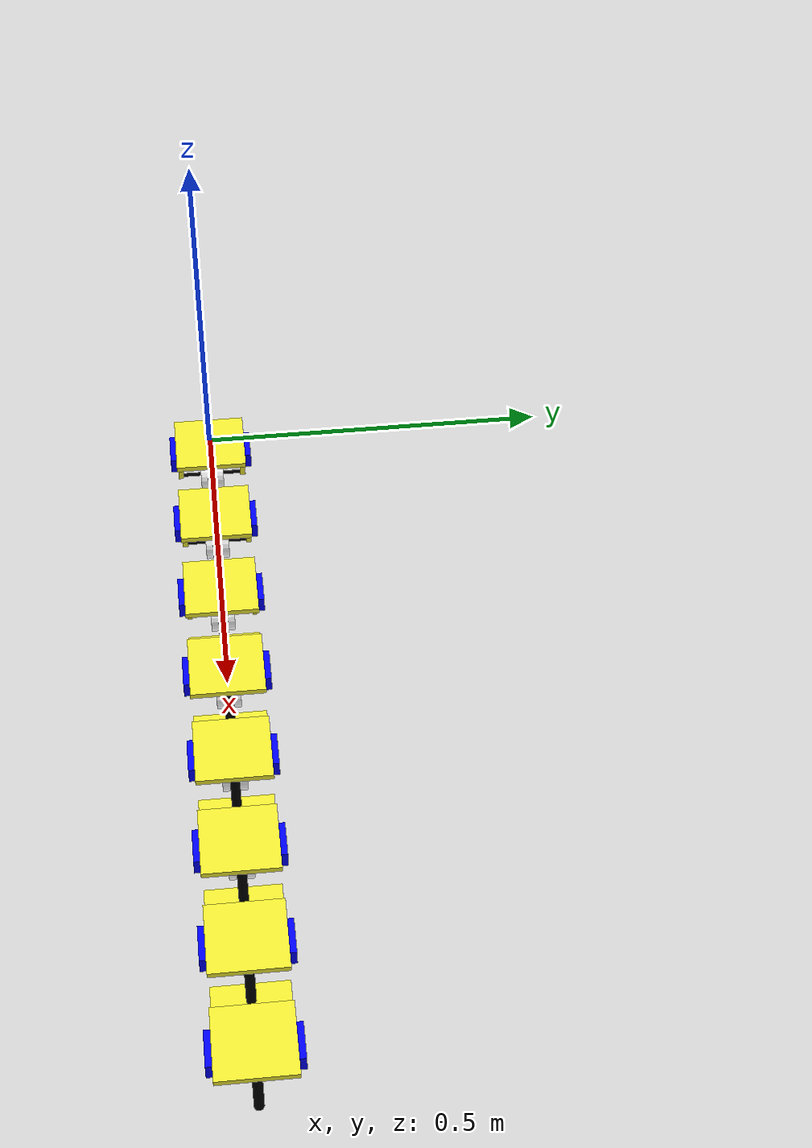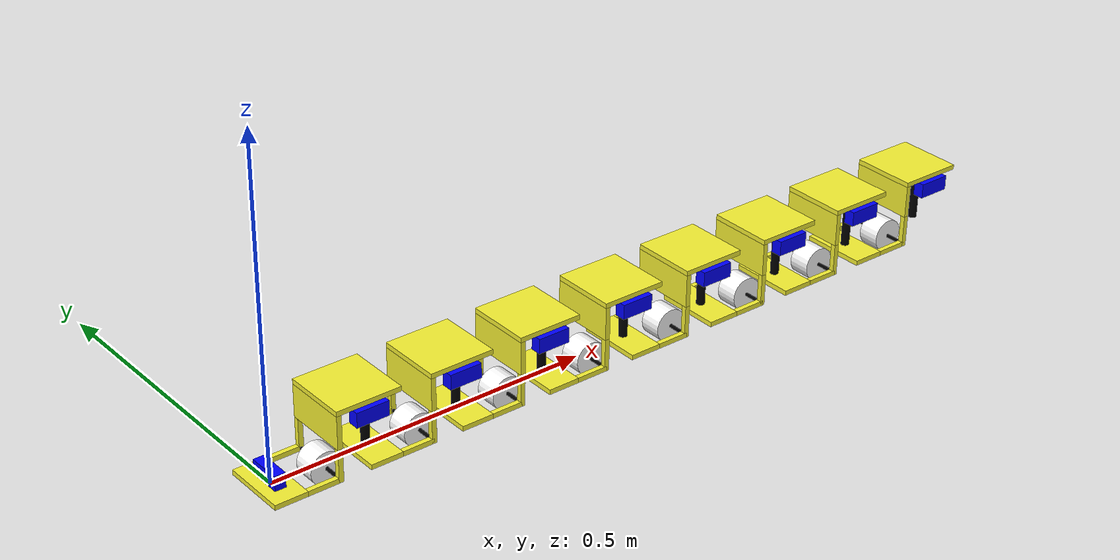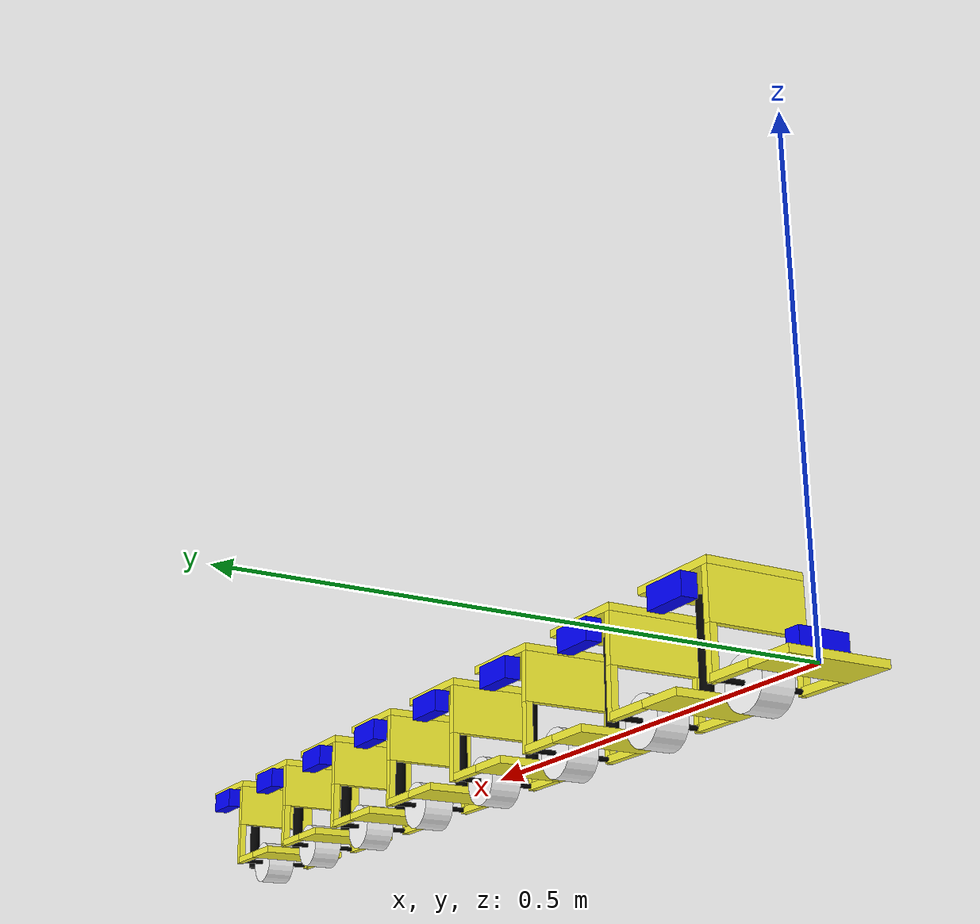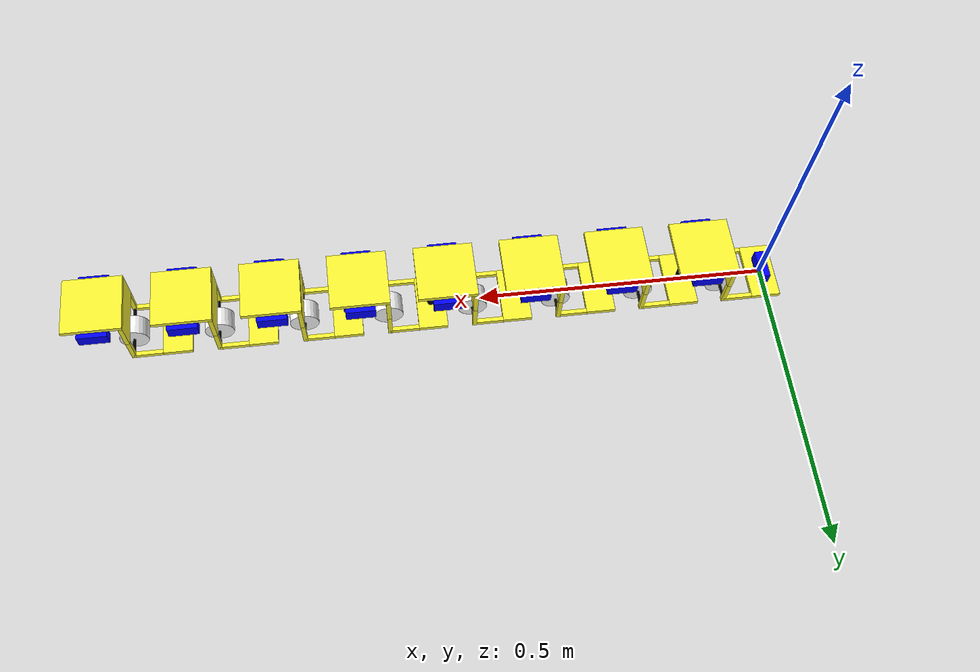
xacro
<?xml version = "1.0"?>
<robot xmlns:xacro = "http://www.ros.org/wiki/xacro" name = "snake_robot">

	<xacro:property name = "pi" value = "3.1416"/>

	<xacro:property name = "length" value = "0.05"/>
	<xacro:property name = "width" value = "0.1"/>
	<xacro:property name = "thick" value = "0.0075"/>
	<xacro:property name = "axel_radius" value = "0.0025"/>
	<xacro:property name = "wheel_radius" value = "0.025"/>
	<xacro:property name = "wheel_length" value = "${width/3}"/>

	<xacro:property name = "plate_mass" value = "0.25"/>
	<xacro:property name = "bar_mass" value = "${(thick/width)*plate_mass}"/>
	<xacro:property name = "axel_mass" value = "0.01"/>
	<xacro:property name = "wheel_mass" value = "0.05"/>
	<xacro:property name = "servo_mass" value = "0.001"/>

	<xacro:include filename = "snake_module.xacro"/>

	<gazebo>
      <plugin name = "gazebo_ros_control" filename = "libgazebo_ros_control.so">
        <robotNamespace>/snake_robot</robotNamespace>
      </plugin>
    </gazebo>

	<xacro:create_snake_module prefix = ""/>

	<xacro:create_snake_module prefix = "2"/>
	<joint name = "base_to_2" type = "revolute">
		<parent link = "servo_motor"/>
		<child link = "2base_link"/>
		<origin xyz = "0 0 ${length}" rpy = "0 ${pi} 0"/>
		<axis xyz = "0 0 1"/>
		<limit effort = "1000.0" lower = "-${pi/4}" upper = "${pi/4}" velocity = "0.5"/>
	</joint>
	<transmission name = "b_2_tran">
		<type>transmission_interface/SimpleTransmission</type>
		<joint name = "base_to_2">
			<hardwareInterface>EffortJointInterface</hardwareInterface>
		</joint>
		<actuator name = "b_2_servo">
			<hardwareInterface>EffortJointInterface</hardwareInterface>
			<mechanicalReduction>1</mechanicalReduction>
		</actuator>
	</transmission>

	<xacro:create_snake_module prefix = "3"/>
	<joint name = "2_to_3" type = "revolute">
		<parent link = "2servo_motor"/>
		<child link = "3base_link"/>
		<origin xyz = "0 0 ${length}" rpy = "0 ${pi} 0"/>
		<axis xyz = "0 0 1"/>
		<limit effort = "1000.0" lower = "-${pi/4}" upper = "${pi/4}" velocity = "0.5"/>
	</joint>
	<transmission name = "2_3_tran">
		<type>transmission_interface/SimpleTransmission</type>
		<joint name = "2_to_3">
			<hardwareInterface>EffortJointInterface</hardwareInterface>
		</joint>
		<actuator name = "2_3_servo">
			<hardwareInterface>EffortJointInterface</hardwareInterface>
			<mechanicalReduction>1</mechanicalReduction>
		</actuator>
	</transmission>

	<xacro:create_snake_module prefix = "4"/>
	<joint name = "3_to_4" type = "revolute">
		<parent link = "3servo_motor"/>
		<child link = "4base_link"/>
		<origin xyz = "0 0 ${length}" rpy = "0 ${pi} 0"/>
		<axis xyz = "0 0 1"/>
		<limit effort = "1000.0" lower = "-${pi/4}" upper = "${pi/4}" velocity = "0.5"/>
	</joint>
	<transmission name = "3_4_tran">
		<type>transmission_interface/SimpleTransmission</type>
		<joint name = "3_to_4">
			<hardwareInterface>EffortJointInterface</hardwareInterface>
		</joint>
		<actuator name = "3_4_servo">
			<hardwareInterface>EffortJointInterface</hardwareInterface>
			<mechanicalReduction>1</mechanicalReduction>
		</actuator>
	</transmission>

	<xacro:create_snake_module prefix = "5"/>
	<joint name = "4_to_5" type = "revolute">
		<parent link = "4servo_motor"/>
		<child link = "5base_link"/>
		<origin xyz = "0 0 ${length}" rpy = "0 ${pi} 0"/>
		<axis xyz = "0 0 1"/>
		<limit effort = "1000.0" lower = "-${pi/4}" upper = "${pi/4}" velocity = "0.5"/>
	</joint>
	<transmission name = "4_5_tran">
		<type>transmission_interface/SimpleTransmission</type>
		<joint name = "4_to_5">
			<hardwareInterface>EffortJointInterface</hardwareInterface>
		</joint>
		<actuator name = "4_5_servo">
			<hardwareInterface>EffortJointInterface</hardwareInterface>
			<mechanicalReduction>1</mechanicalReduction>
		</actuator>
	</transmission>

	<xacro:create_snake_module prefix = "6"/>
	<joint name = "5_to_6" type = "revolute">
		<parent link = "5servo_motor"/>
		<child link = "6base_link"/>
		<origin xyz = "0 0 ${length}" rpy = "0 ${pi} 0"/>
		<axis xyz = "0 0 1"/>
		<limit effort = "1000.0" lower = "-${pi/4}" upper = "${pi/4}" velocity = "0.5"/>
	</joint>
	<transmission name = "5_6_tran">
		<type>transmission_interface/SimpleTransmission</type>
		<joint name = "5_to_6">
			<hardwareInterface>EffortJointInterface</hardwareInterface>
		</joint>
		<actuator name = "5_6_servo">
			<hardwareInterface>EffortJointInterface</hardwareInterface>
			<mechanicalReduction>1</mechanicalReduction>
		</actuator>
	</transmission>

	<xacro:create_snake_module prefix = "7"/>
	<joint name = "6_to_7" type = "revolute">
		<parent link = "6servo_motor"/>
		<child link = "7base_link"/>
		<origin xyz = "0 0 ${length}" rpy = "0 ${pi} 0"/>
		<axis xyz = "0 0 1"/>
		<limit effort = "1000.0" lower = "-${pi/4}" upper = "${pi/4}" velocity = "0.5"/>
	</joint>
	<transmission name = "6_7_tran">
		<type>transmission_interface/SimpleTransmission</type>
		<joint name = "6_to_7">
			<hardwareInterface>EffortJointInterface</hardwareInterface>
		</joint>
		<actuator name = "6_7_servo">
			<hardwareInterface>EffortJointInterface</hardwareInterface>
			<mechanicalReduction>1</mechanicalReduction>
		</actuator>
	</transmission>

	<xacro:create_snake_module prefix = "8"/>
	<joint name = "7_to_8" type = "revolute">
		<parent link = "7servo_motor"/>
		<child link = "8base_link"/>
		<origin xyz = "0 0 ${length}" rpy = "0 ${pi} 0"/>
		<axis xyz = "0 0 1"/>
		<limit effort = "1000.0" lower = "-${pi/4}" upper = "${pi/4}" velocity = "0.5"/>
	</joint>
	<transmission name = "7_8_tran">
		<type>transmission_interface/SimpleTransmission</type>
		<joint name = "7_to_8">
			<hardwareInterface>EffortJointInterface</hardwareInterface>
		</joint>
		<actuator name = "7_8_servo">
			<hardwareInterface>EffortJointInterface</hardwareInterface>
			<mechanicalReduction>1</mechanicalReduction>
		</actuator>
	</transmission>

	<link name="head_sonar">
    	<visual>
      		<geometry>
        		<box size="${length/3} ${width/2} ${3*thick}"/>
      		</geometry>
      		<material name="blue">
      			<color rgba = "0 0 1 1"/>
      		</material>
    	</visual>
    </link>
    <joint name="head_sonar_joint" type="fixed">
    	<origin xyz="0 0 ${2*thick}" rpy="0 0 ${pi}"/>
    	<parent link="base_link"/>
    	<child link="head_sonar"/>
  	</joint>

	<xacro:include filename = "robot_tags.gazebo"/>

</robot>

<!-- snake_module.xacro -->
<robot xmlns:xacro = "http://www.ros.org/wiki/xacro" name = "snake_module">

	<xacro:macro name = "create_box" params = "bname len wid thk mass clr">
		<link name = "${bname}">
			<visual>
				<geometry>
					<box size = "${len} ${wid} ${thk}"/>
				</geometry>
				<material name = "">
					<color rgba = "${clr} 1"/>
				</material>
			</visual>
			<collision>
				<geometry>
					<box size = "${len} ${wid} ${thk}"/>
				</geometry>
			</collision>
			<inertial>
				<mass value = "${mass}"/>
				<inertia ixx = "${(mass*((wid*wid)+(thk*thk)))/12}" ixy = "0.0" ixz = "0.0"
					iyy = "${(mass*((len*len)+(thk*thk)))/12}" iyz = "0.0"
					izz = "${(mass*((wid*wid)+(len*len)))/12}"/>
			</inertial>
		</link>
	</xacro:macro>

	<xacro:macro name = "create_cyl" params = "cname len rad mass clr">
		<link name = "${cname}">
			<visual>
				<geometry>
					<cylinder length = "${len}" radius = "${rad}"/>
				</geometry>
				<material name = "">
					<color rgba = "${clr} 1"/>
				</material>
			</visual>
			<collision>
				<geometry>
					<cylinder length = "${len}" radius = "${rad}"/>
				</geometry>
			</collision>
			<inertial>
				<mass value = "${mass}"/>
				<inertia ixx = "${(mass*((3*rad*rad)+(len*len)))/12}" ixy = "0.0" ixz = "0.0"
					iyy = "${(mass*((3*rad*rad)+(len*len)))/12}" iyz = "0.0"
					izz = "${(mass*rad*rad)/2}"/>
			</inertial>
		</link>
	</xacro:macro>

	<xacro:macro name = "create_snake_module" params = "prefix">

		<xacro:create_box bname = "${prefix}base_link" len = "${length}" wid = "${width}" thk = "${thick}" mass = "${plate_mass}" clr = "0.97 0.95 0.20"/>
		<xacro:create_box bname = "${prefix}base_bar1" len = "${length}" wid = "${thick}" thk = "${thick}" mass = "${bar_mass}" clr = "0.97 0.95 0.20"/>
		<xacro:create_box bname = "${prefix}base_bar2" len = "${length}" wid = "${thick}" thk = "${thick}" mass = "${bar_mass}" clr = "0.97 0.95 0.20"/>

		<joint name = "${prefix}base_to_bbar1" type = "fixed">
			<parent link = "${prefix}base_link"/>
			<child link = "${prefix}base_bar1"/>
			<origin xyz = "${length} ${(width-thick)/2} 0"/>
		</joint>

		<joint name = "${prefix}base_to_bbar2" type = "fixed">
			<parent link = "${prefix}base_link"/>
			<child link = "${prefix}base_bar2"/>
			<origin xyz = "${length} -${(width-thick)/2} 0"/>
		</joint>

		<xacro:create_box bname = "${prefix}step_link" len = "${length}" wid = "${width}" thk = "${thick}" mass = "${plate_mass}" clr = "0.97 0.95 0.20"/>
		<xacro:create_box bname = "${prefix}step_bar1" len = "${length}" wid = "${thick}" thk = "${thick}" mass = "${bar_mass}" clr = "0.97 0.95 0.20"/>
		<xacro:create_box bname = "${prefix}step_bar2" len = "${length}" wid = "${thick}" thk = "${thick}" mass = "${bar_mass}" clr = "0.97 0.95 0.20"/>

		<joint name = "${prefix}bbar1_to_sbar1" type = "fixed">
			<parent link = "${prefix}base_bar1"/>
			<child link = "${prefix}step_bar1"/>
			<origin xyz = "${length/2} 0 ${(length-thick)/2}" rpy = "0 ${pi/2} 0"/>
		</joint>

		<joint name = "${prefix}bbar2_to_sbar2" type = "fixed">
			<parent link = "${prefix}base_bar2"/>
			<child link = "${prefix}step_bar2"/>
			<origin xyz = "${length/2} 0 ${(length-thick)/2}" rpy = "0 ${pi/2} 0"/>
		</joint>

		<joint name = "${prefix}sbar1_to_step" type = "fixed">
			<parent link = "${prefix}step_bar1"/>
			<child link = "${prefix}step_link"/>
			<origin xyz = "-${length} -${(width-thick)/2} 0" rpy = "0 0 0"/>
		</joint>

		<xacro:create_box bname = "${prefix}ceil_link" len = "${2*length}" wid = "${width}" thk = "${thick}" mass = "${2*plate_mass}" clr = "0.97 0.95 0.20"/>

		<joint name = "${prefix}step_to_ceil" type = "fixed">
			<parent link = "${prefix}step_link"/>
			<child link = "${prefix}ceil_link"/>
			<origin xyz = "-${(length+thick)/2} 0 ${length-(thick/2)}" rpy = "0 ${pi/2} 0"/>
		</joint>

		<xacro:create_cyl cname = "${prefix}wheel_axel" len = "${width-(2*thick)}" rad = "${axel_radius}" mass = "${axel_mass}" clr = "0 0 0"/>
		<xacro:create_cyl cname = "${prefix}wheel" len = "${wheel_length}" rad = "${wheel_radius}" mass = "${wheel_mass}" clr = "1 1 1"/>
		<xacro:create_cyl cname = "${prefix}servo_motor" len = "${(2*length)-thick}" rad = "${wheel_radius/4}" mass = "${servo_mass}" clr = "0 0 0"/>

		<joint name = "${prefix}bbar2_to_axel" type = "fixed">
			<parent link = "${prefix}base_bar2"/>
			<child link = "${prefix}wheel_axel"/>
			<origin xyz = "${length/2} ${(width-thick)/2} 0" rpy = "${pi/2} 0 0"/>
		</joint>

		<joint name = "${prefix}axel_to_wheel" type = "continuous">
			<parent link = "${prefix}wheel_axel"/>
			<child link = "${prefix}wheel"/>
			<origin xyz = "0 0 0" rpy = "0 0 0"/>
			<axis xyz = "0 0 1"/>
		</joint>

		<joint name = "${prefix}ceil_to_servo" type = "fixed">
			<parent link = "${prefix}ceil_link"/>
			<child link = "${prefix}servo_motor"/>
			<origin xyz = "-${length/2} 0 ${length}" rpy = "0 0 0"/>
		</joint>

		<xacro:create_box bname = "${prefix}sonar_left" len = "${length/3}" wid = "${width/2}" thk = "${3*thick}" mass = "0" clr = "0 0 1"/>
		<xacro:create_box bname = "${prefix}sonar_right" len = "${length/3}" wid = "${width/2}" thk = "${3*thick}" mass = "0" clr = "0 0 1"/>

	    <joint name="${prefix}sonar_left_joint" type="fixed">
	    	<origin xyz="0 -${width/2} ${2*thick}" rpy="0 ${pi} ${pi/2}"/>
	    	<parent link="${prefix}ceil_link"/>
	    	<child link="${prefix}sonar_left"/>
	  	</joint>

	    <joint name="${prefix}sonar_right_joint" type="fixed">
	    	<origin xyz="0 ${width/2} ${2*thick}" rpy="0 0 ${pi/2}"/>
	    	<parent link="${prefix}ceil_link"/>
	    	<child link="${prefix}sonar_right"/>
	  	</joint>

		<xacro:include filename = "module_tags.gazebo"/>

	</xacro:macro>

</robot>
